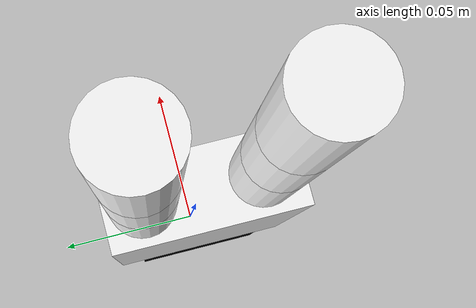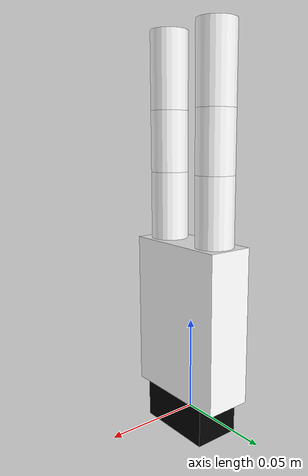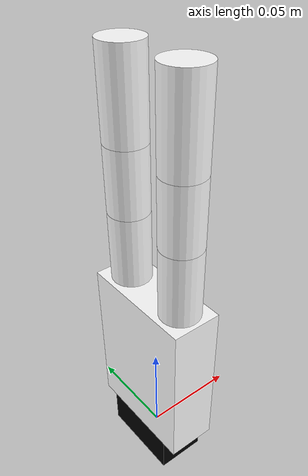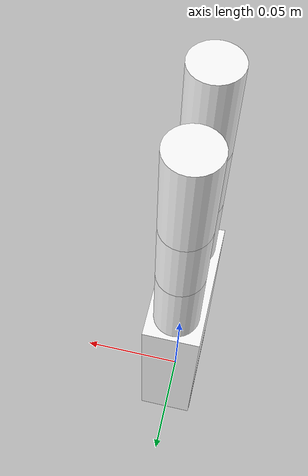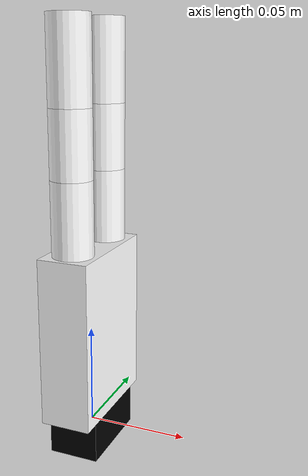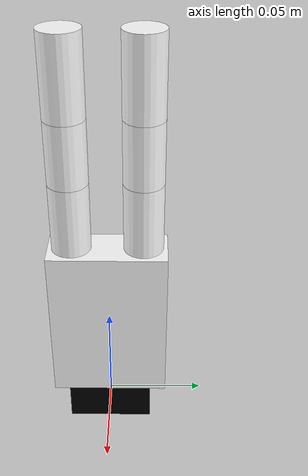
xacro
<?xml version="1.0" ?>

<robot name = "lefthand" xmlns:xacro="http://ros.org/wiki/xacro">

    <!-- Include Materials -->
    <material name="Black">
        <color rgba="0.0 0.0 0.0 1.0"/>
    </material>

    <material name="Red">
        <color rgba="0.8 0.0 0.0 1.0"/>
    </material>

    <material name="White">
        <color rgba="1.0 1.0 1.0 1.0"/>
    </material>

    <!--constants-->
    <xacro:property name="deg_to_rad" value="0.01745329251994329577"/>
    <xacro:property name="M_SCALE" value="0.001 0.001 0.001"/>
    <xacro:property name="M_PI" value="3.14159"/>
    <xacro:property name="yaw" value="1.57"/>

    <!-- Carpals Box -->
    <xacro:property name="c_l" value="0.0437" />
    <xacro:property name="c_b" value="0.025" />
    <xacro:property name="c_h" value="0.02" />

    <!-- Metacarpals Box-->
    <xacro:property name="metc_l" value="0.06" />
    <xacro:property name="metc_b" value="0.025" />
    <xacro:property name="metc_h" value="0.0837" />

    <!-- Middle Finger -->
    <!-- Proximal -->
    <xacro:property name="proxlen" value="0.036"/>
    <xacro:property name="proxrad" value="0.010"/>
    <!-- Intermediate -->
    <xacro:property name="interlen" value="0.032"/>
    <xacro:property name="interrad" value="0.010"/>
    <!-- Distal -->
    <xacro:property name="distlen" value="0.040"/>
    <xacro:property name="distrad" value="0.010"/>

    <xacro:macro name="inertial_matrix" params="mass">
        <inertial>
            <mass value="${mass}"/>
            <inertia ixx="1.0" ixy="0.0" ixz="0.0" iyy="0.5" iyz="0.0" izz="1.0" />
        </inertial>
    </xacro:macro>

    <xacro:macro name="transmission_block" params="joint_name">
        <transmission name="tran1">
            <type>transmission_interface/SimpleTransmission</type>
            <joint name="${joint_name}">
    	      <hardwareInterface>hardware_interface/PositionJointInterface</hardwareInterface>
            </joint>
            <actuator name="motor1">
                <hardwareInterface>hardware_interface/PositionJointInterface</hardwareInterface>
                <mechanicalReduction>1</mechanicalReduction>
            </actuator>
        </transmission>
    </xacro:macro>

    <!-- JOINTS AND LINKS -->

    <link name="base_link">
        <visual>
            <origin xyz="0 0 0" rpy="0 0 ${yaw}"/>
            <geometry>
                <box size="${c_l} ${c_b} ${c_h}"/>
            </geometry>
            <material name="Black"/>
        </visual>

        <!--xacro:inertial_matrix mass="1"/-->
    </link>

    <gazebo reference="base_link">
        <material>Gazebo/White</material>
    </gazebo>

    <joint name="carpal_metacarpal_roll" type="revolute">
        <origin xyz="0 0 0" rpy="0 0 0"/>
        <parent link="base_link"/>
        <child link="metacarpal_roll"/>
        <axis xyz="1 0 0"/>
        <limit effort="300" velocity="1" lower="1.57" upper="-1.57" />
        <dynamics damping="50" friction="1"/>
    </joint>
    <link name = "metacarpal_roll"/>
    <joint name="carpal_metacarpal_pitch" type="revolute">
        <origin xyz="0 0 0" rpy="0 0 0"/>
        <parent link="metacarpal_roll"/>
        <child link="metacarpal_pitch"/>
        <axis xyz="0 1 0"/>
        <limit effort="300" velocity="1" lower="-1.57" upper="1.57" />
        <dynamics damping="50" friction="1"/>
    </joint>
    <link name = "metacarpal_pitch"/>
    <joint name="carpal_metacarpal_yaw" type="revolute">
        <origin xyz="0 0 0" rpy="0 0 0"/>
        <parent link="metacarpal_pitch"/>
        <child link="metacarpal"/>
        <axis xyz="0 0 1"/>
        <limit effort="300" velocity="1" lower="-3.14" upper="0" />
        <dynamics damping="50" friction="1"/>
    </joint>
    <link name="metacarpal">
        <visual>
            <origin xyz="0 0 0.05185" rpy="0 0 ${yaw}"/>
            <geometry>
                <box size="${metc_l} ${metc_b} ${metc_h}"/>
            </geometry>
            <material name="White"/>
        </visual>
        <xacro:inertial_matrix mass="1"/>
    </link>

    <gazebo reference="metacarpal">
        <material>Gazebo/Black</material>
    </gazebo>
    <!-- INDEX FINGER PROXIMAL-->
    <joint name="metacarpal_index" type="revolute">
        <origin xyz="0 0 0.0937" rpy="0 0 0"/>
        <parent link="metacarpal"/>
        <child link="index_p"/>
        <axis xyz="0 1 0"/>
        <limit effort="300" velocity="1" lower="0" upper="1.57" />
        <dynamics damping="50" friction="1"/>
    </joint>
    <link name="index_p">
        <visual>
            <origin xyz="0 0.018 0.018" rpy="0 0 ${yaw}"/>
            <geometry>
                <cylinder radius="${proxrad}" length="${proxlen}"/>
            </geometry>
            <material name="White"/>
        </visual>
        <xacro:inertial_matrix mass="1"/>
    </link>

    <!-- INDEX FINGER INTERMEDIATE-->
    <joint name="index_prox_inter" type="revolute">
        <origin xyz="0 0 ${proxlen}" rpy="0 0 0"/>
        <parent link="index_p"/>
        <child link="index_i"/>
        <axis xyz="0 1 0"/>
        <limit effort="300" velocity="1" lower="0" upper="1.57" />
        <dynamics damping="50" friction="1"/>
    </joint>
    <link name="index_i">
        <visual>
            <origin xyz="0 0.018 0.016" rpy="0 0 ${yaw}"/>
            <geometry>
                <cylinder radius="${interrad}" length="${interlen}"/>
            </geometry>
            <material name="White"/>
        </visual>

        <xacro:inertial_matrix mass="1"/>
    </link>
    <!-- INDEX FINGER DISTAL-->
    <joint name="index_inter_dist" type="revolute">
        <origin xyz="0 0 ${interlen}" rpy="0 0 0"/>
        <parent link="index_i"/>
        <child link="index_d"/>
        <axis xyz="0 1 0"/>
        <limit effort="300" velocity="1" lower="0" upper="1.57" />
        <dynamics damping="50" friction="1"/>
    </joint>
    <link name="index_d">
        <visual>
            <origin xyz="0 0.018 0.020" rpy="0 0 ${yaw}"/>
            <geometry>
                <cylinder radius="${distrad}" length="${distlen}"/>
            </geometry>
            <material name="White"/>
        </visual>

        <xacro:inertial_matrix mass="1"/>
    </link>

    <!-- MIDDLE FINGER PROXIMAL-->
    <joint name="metacarpal_middle" type="revolute">
        <origin xyz="0 0 0.0937" rpy="0 0 0"/>
        <parent link="metacarpal"/>
        <child link="middle_p"/>
        <axis xyz="0 1 0"/>
        <limit effort="300" velocity="1" lower="0" upper="1.57" />
        <dynamics damping="50" friction="1"/>
    </joint>
    <link name="middle_p">
        <visual>
            <origin xyz="0 -0.018 0.018" rpy="0 0 ${yaw}"/>
            <geometry>
                <cylinder radius="${proxrad}" length="${proxlen}"/>
            </geometry>
            <material name="White"/>
        </visual>

        <xacro:inertial_matrix mass="1"/>
    </link>

    <!-- MIDDLE FINGER INTERMEDIATE-->
    <joint name="middle_prox_inter" type="revolute">
        <origin xyz="0 0 ${proxlen}" rpy="0 0 0"/>
        <parent link="middle_p"/>
        <child link="middle_i"/>
        <axis xyz="0 1 0"/>
        <limit effort="300" velocity="1" lower="0" upper="1.57" />
        <dynamics damping="50" friction="1"/>
    </joint>
    <link name="middle_i">
        <visual>
            <origin xyz="0 -0.018 0.016" rpy="0 0 ${yaw}"/>
            <geometry>
                <cylinder radius="${interrad}" length="${interlen}"/>
            </geometry>
            <material name="White"/>
        </visual>

        <xacro:inertial_matrix mass="1"/>
    </link>
    <!-- MIDDLE FINGER DISTAL-->
    <joint name="middle_inter_dist" type="revolute">
        <origin xyz="0 0 ${interlen}" rpy="0 0 0"/>
        <parent link="middle_i"/>
        <child link="middle_d"/>
        <axis xyz="0 1 0"/>
        <limit effort="300" velocity="1" lower="0" upper="1.57" />
        <dynamics damping="50" friction="1"/>
    </joint>
    <link name="middle_d">
        <visual>
            <origin xyz="0 -0.018 0.020" rpy="0 0 ${yaw}"/>
            <geometry>
                <cylinder radius="${distrad}" length="${distlen}"/>
            </geometry>
            <material name="White"/>
        </visual>

        <xacro:inertial_matrix mass="1"/>
    </link>
  <!-- Transmissions for ROS Control -->
    <xacro:transmission_block joint_name="carpal_metacarpal_roll"/>
    <xacro:transmission_block joint_name="carpal_metacarpal_pitch"/>
    <xacro:transmission_block joint_name="carpal_metacarpal_yaw"/>
    <xacro:transmission_block joint_name="metacarpal_index"/>
    <xacro:transmission_block joint_name="index_prox_inter"/>
    <xacro:transmission_block joint_name="index_inter_dist"/>
    <xacro:transmission_block joint_name="metacarpal_middle"/>
    <xacro:transmission_block joint_name="middle_prox_inter"/>
    <xacro:transmission_block joint_name="middle_inter_dist"/>

 <!-- ros_control plugin -->
  <gazebo>
    <plugin name="gazebo_ros_control" filename="libgazebo_ros_control.so">
      <robotNamespace>/lefthand</robotNamespace>
    </plugin>
  </gazebo>

</robot>
